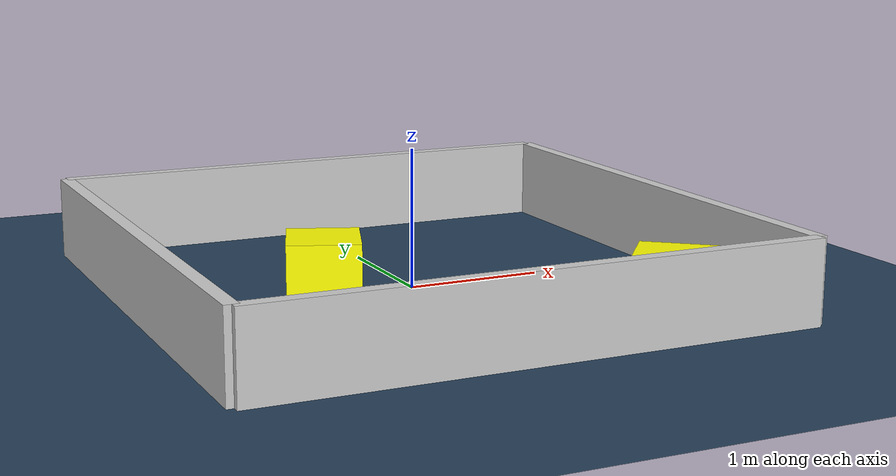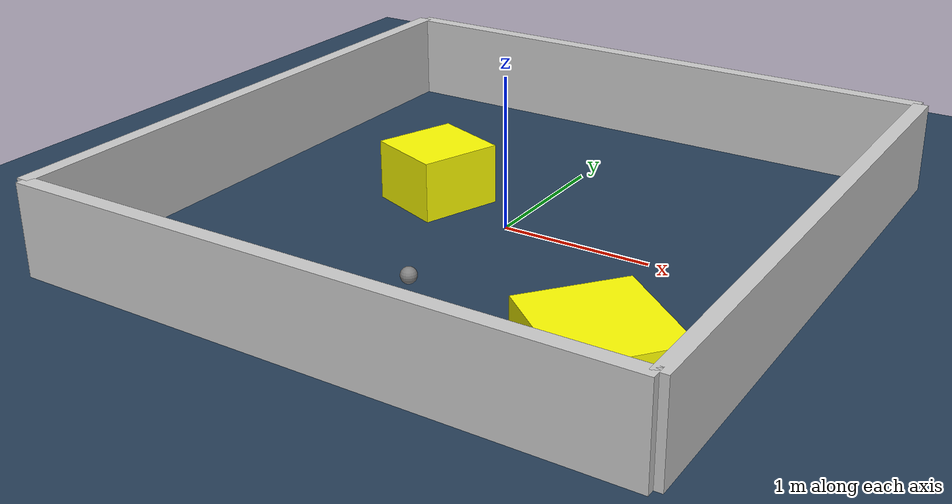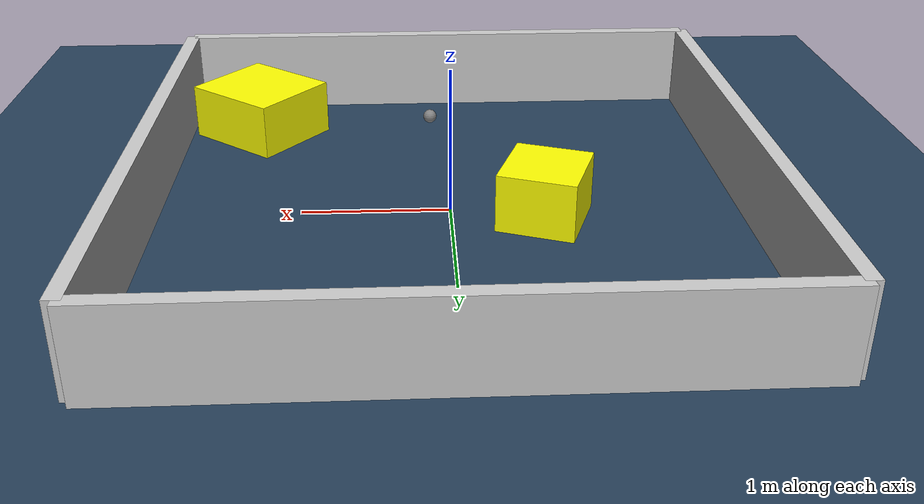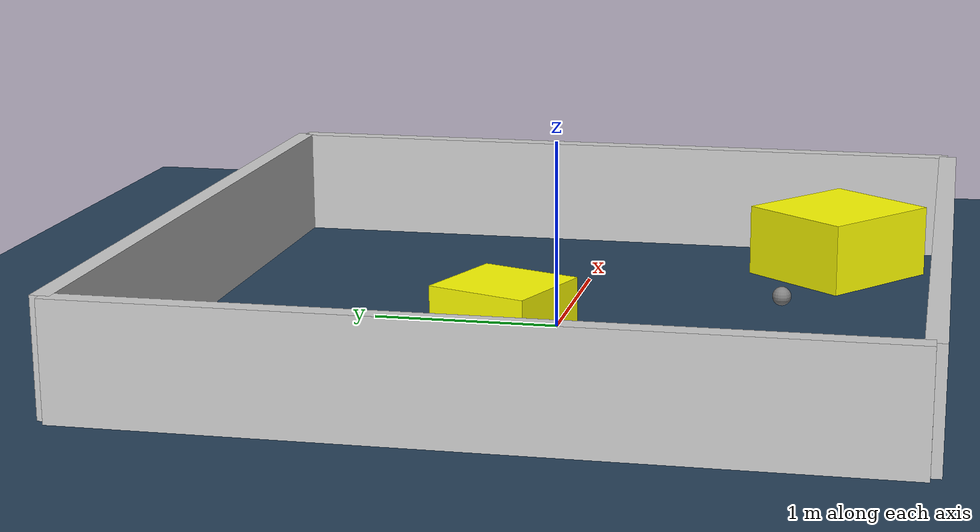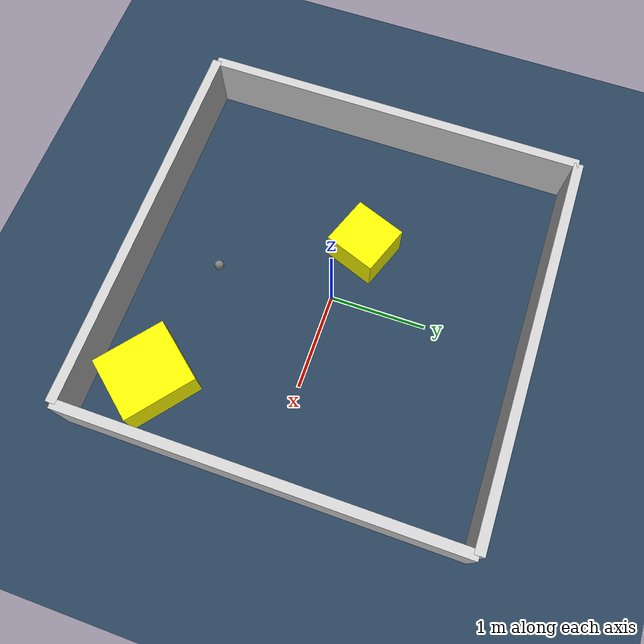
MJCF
<?xml version="1.0" ?>
<mujoco model="generated_environment">
  <option timestep="0.01" integrator="RK4" cone="elliptic"/>
  <default>
    <geom density="1"/>
  </default>
  <asset>
    <texture builtin="gradient" height="3072" rgb1="0.3 0.5 0.7" rgb2="0 0 0" type="skybox" width="512"/>
    <texture builtin="checker" height="300" mark="edge" markrgb="0.8 0.8 0.8" name="groundplane" rgb1="0.2 0.3 0.4" rgb2="0.1 0.2 0.3" type="2d" width="300"/>
    <material name="groundplane" reflectance="0.2" texrepeat="5 5" texture="groundplane" texuniform="true"/>
    <material name="robot" rgba="0.0 1.0 0.0 1"/>
  </asset>
  <worldbody>
    <light dir="0 0 -1" directional="true" pos="0 0 1.5"/>
    <geom condim="4" friction="1.0 0.005 0.001" material="groundplane" name="floor" size="0 0 0.05" type="plane"/>
    <body name="walls">
      <geom name="wall_1" condim="4" pos="-2.0 0.0 0.3" rgba="0.800000011920929 0.800000011920929 0.800000011920929 1.0" size="0.05 2.0 0.3" type="box"/>
      <geom name="wall_2" condim="4" pos="2.0 0.0 0.3" rgba="0.800000011920929 0.800000011920929 0.800000011920929 1.0" size="0.05 2.0 0.3" type="box"/>
      <geom name="wall_3" condim="4" pos="0.0 -2.0 0.3" rgba="0.800000011920929 0.800000011920929 0.800000011920929 1.0" size="2.0 0.05 0.3" type="box"/>
      <geom name="wall_4" condim="4" pos="0.0 2.0 0.3" rgba="0.800000011920929 0.800000011920929 0.800000011920929 1.0" size="2.0 0.05 0.3" type="box"/>
    </body>
    <body name="robot">
      <joint name="joint_x" type="slide" pos="0 0 0" axis="1 0 0"/>
      <joint name="joint_y" type="slide" pos="0 0 0" axis="0 1 0"/>
      <geom name="robot" type="sphere" pos="0.10340895280701723 -1.1827963582379335 0.2" size="0.05" mass="5." friction="1.0 0.005 0.0001" condim="4"/>
      <site name="sensor_ball"/>
    </body>
    <body name="obstacle_1_movable">
      <geom name="obstacle_1_movable" condim="4" pos="-0.6172986445307551 0.15178118394879414 0.2" euler="0 0 69.58020379038572" friction="1.0 0.005 0.001" rgba="1 1 0 1" size="0.27405561739259465 0.2636080164149302 0.2" type="box" mass="0.1"/>
      <joint type="free"/>
    </body>
    <body name="obstacle_2_movable">
      <geom name="obstacle_2_movable" condim="4" pos="1.4072086299980016 -1.39468121757107 0.2" euler="0 0 140.9563513939139" friction="1.0 0.005 0.001" rgba="1 1 0 1" size="0.3759063860355183 0.33959423573748737 0.2" type="box" mass="0.1"/>
      <joint type="free"/>
    </body>
  </worldbody>
  <actuator>
    <motor name="actuator_x" joint="joint_x" gear="1" ctrlrange="-1 1"/>
    <motor name="actuator_y" joint="joint_y" gear="1" ctrlrange="-1 1"/>
  </actuator>
</mujoco>
